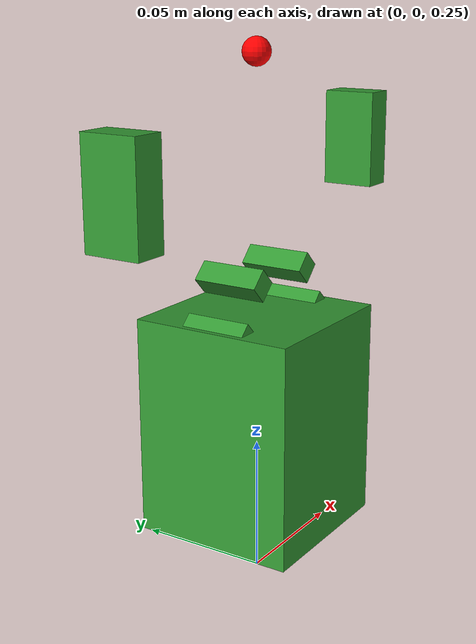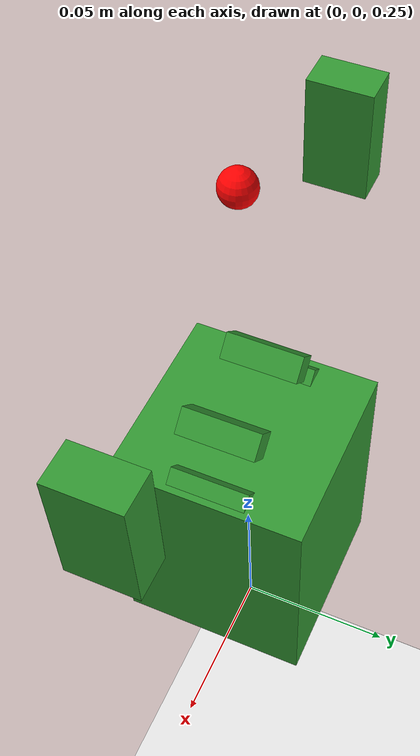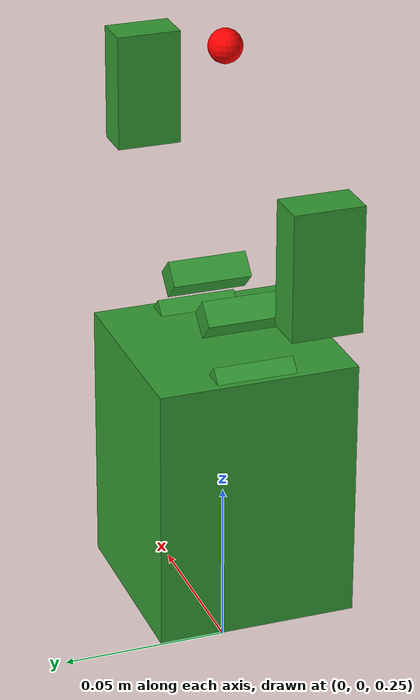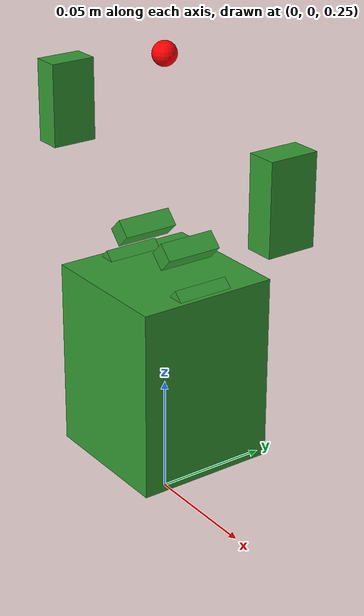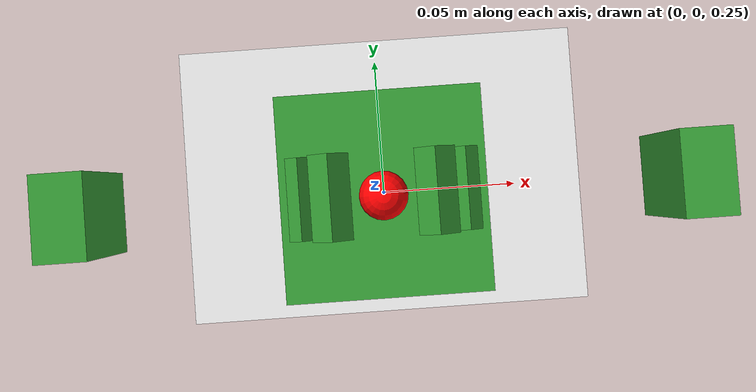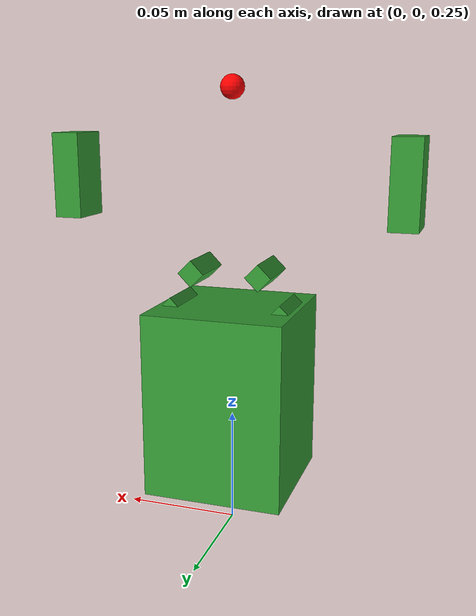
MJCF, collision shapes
<mujoco model="rg2_v2_scene">
  <compiler angle="radian" />
  <option gravity="0 0 -9.81" timestep="0.001" iterations="60"/>

  <include file="rg2_v2_assets.xml"/>
  <include file="rg2_v2_coupling.xml"/>

  <worldbody>
    <light name="key" pos="0 0 1" dir="0 0 -1"/>
    <geom name="floor" type="plane" size="2 2 0.1" rgba="0.9 0.9 0.9 1"/>

    <body name="rg2_v2_mount" pos="0 0 0.25">
      <freejoint/>
      <include file="rg2_v2_gripper_body.xml"/>
    </body>
  </worldbody>
</mujoco>

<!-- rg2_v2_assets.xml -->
<mujocoinclude>
  <default>
    <default class="visual">
      <geom type="mesh" contype="0" conaffinity="0" group="2" rgba="0.75 0.75 0.75 1"/>
    </default>
    <default class="collision">
      <geom type="box" group="3" rgba="0.2 0.6 0.2 0.15"/>
    </default>
  </default>

  <asset>
    <!-- Official RG2 v2 mesh you added. If it looks 1000x too big, remove scale. -->
    <mesh name="rg2_v2_mesh" file="RG2_v2.stl" scale="0.001 0.001 0.001"/>
  </asset>
</mujocoinclude>

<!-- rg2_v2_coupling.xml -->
<mujocoinclude>
  <equality>
    <!-- Mimic relationships (multiplier=1, offset=0) -->
    <joint joint1="rg2_v2_gripper_joint" joint2="rg2_v2_gripper_mirror_joint" polycoef="0 1 0 0 0"
           solref="0.03 1" solimp="0.9 0.95 0.001 0.5 2"/>

    <joint joint1="rg2_v2_gripper_joint" joint2="rg2_v2_finger_1_truss_arm_joint" polycoef="0 1 0 0 0"
           solref="0.03 1" solimp="0.9 0.95 0.001 0.5 2"/>
    <joint joint1="rg2_v2_gripper_joint" joint2="rg2_v2_finger_1_finger_tip_joint" polycoef="0 1 0 0 0"
           solref="0.03 1" solimp="0.9 0.95 0.001 0.5 2"/>

    <joint joint1="rg2_v2_gripper_joint" joint2="rg2_v2_finger_2_truss_arm_joint" polycoef="0 1 0 0 0"
           solref="0.03 1" solimp="0.9 0.95 0.001 0.5 2"/>
    <joint joint1="rg2_v2_gripper_joint" joint2="rg2_v2_finger_2_finger_tip_joint" polycoef="0 1 0 0 0"
           solref="0.03 1" solimp="0.9 0.95 0.001 0.5 2"/>
  </equality>

  <actuator>
    <position name="rg2_v2_open_close" joint="rg2_v2_gripper_joint"
              kp="40" kv="5"
              ctrlrange="0 1.3" forcerange="-50 50"/>
  </actuator>
</mujocoinclude>

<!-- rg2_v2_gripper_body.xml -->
<mujocoinclude>
  <body name="rg2_v2">
    <!-- static visual shell -->
    <geom class="visual" mesh="rg2_v2_mesh"/>

    <!-- base collision proxy (tune as needed) -->
    <geom class="collision" size="0.03 0.03 0.04" pos="0 0 0.06"/>

    <!-- body fixed offset from bracket: origin[single_bracket] -->
    <body name="rg2_v2_body" pos="0 0 0.05">
      <!-- grasp frame (site) -->
      <site name="rg2_v2_grasp_frame" pos="0 0 0.14" size="0.005" rgba="1 0 0 1"/>

      <!-- Finger 1 (master) -->
      <body name="rg2_v2_finger_1_origin" euler="0 0 0">
        <inertial pos="0 0 0" mass="0.001" diaginertia="1e-6 1e-6 1e-6"/>

        <!-- moment arm joint (master) -->
        <body name="rg2_v2_finger_1_moment_arm" pos="-0.017 0 0.055" euler="0 -0.772 0">
          <joint name="rg2_v2_gripper_joint" type="hinge" axis="0 1 0" range="0 1.3"
                 damping="0.4" armature="0.02" frictionloss="0.02"/>
          <!-- proxy geom for linkage mass/contact -->
          <geom class="collision" size="0.004 0.012 0.004" pos="-0.01 0 0"/>
        </body>

        <!-- truss arm joint -->
        <body name="rg2_v2_finger_1_truss_arm" pos="-0.0075 0 0.0715" euler="0 -0.772 0">
          <joint name="rg2_v2_finger_1_truss_arm_joint" type="hinge" axis="0 1 0" range="0 1.3"
                 damping="0.3" armature="0.01" frictionloss="0.01"/>
          <geom class="collision" size="0.004 0.012 0.004" pos="-0.01 0 0"/>

          <!-- finger tip joint -->
          <body name="rg2_v2_finger_1_finger_tip" pos="-0.0256 0 0.04868" euler="0 0.772 0">
            <joint name="rg2_v2_finger_1_finger_tip_joint" type="hinge" axis="0 -1 0" range="0 1.3"
                   damping="0.25" armature="0.01" frictionloss="0.01"/>

            <!-- main fingertip contact proxy -->
            <geom class="collision" size="0.006 0.010 0.018" pos="-0.012 0 0.015"/>
          </body>
        </body>
      </body>

      <!-- Finger 2 (mirror): yaw pi -->
      <body name="rg2_v2_finger_2_origin" euler="0 0 3.141592653589793">
        <inertial pos="0 0 0" mass="0.001" diaginertia="1e-6 1e-6 1e-6"/>

        <body name="rg2_v2_finger_2_moment_arm" pos="-0.017 0 0.055" euler="0 -0.772 0">
          <joint name="rg2_v2_gripper_mirror_joint" type="hinge" axis="0 1 0" range="0 1.3"
                 damping="0.4" armature="0.02" frictionloss="0.02"/>
          <geom class="collision" size="0.004 0.012 0.004" pos="-0.01 0 0"/>
        </body>

        <body name="rg2_v2_finger_2_truss_arm" pos="-0.0075 0 0.0715" euler="0 -0.772 0">
          <joint name="rg2_v2_finger_2_truss_arm_joint" type="hinge" axis="0 1 0" range="0 1.3"
                 damping="0.3" armature="0.01" frictionloss="0.01"/>
          <geom class="collision" size="0.004 0.012 0.004" pos="-0.01 0 0"/>

          <body name="rg2_v2_finger_2_finger_tip" pos="-0.0256 0 0.04868" euler="0 0.772 0">
            <joint name="rg2_v2_finger_2_finger_tip_joint" type="hinge" axis="0 -1 0" range="0 1.3"
                   damping="0.25" armature="0.01" frictionloss="0.01"/>
            <geom class="collision" size="0.006 0.010 0.018" pos="-0.012 0 0.015"/>
          </body>
        </body>
      </body>
    </body>
  </body>
</mujocoinclude>
